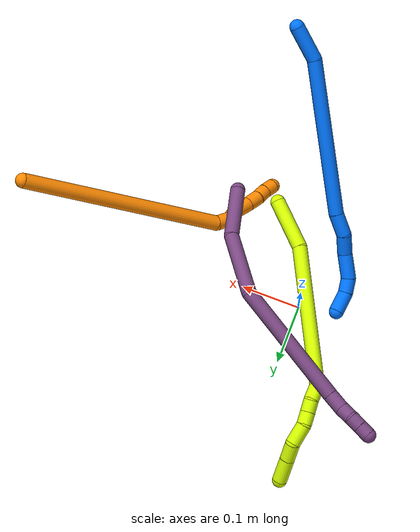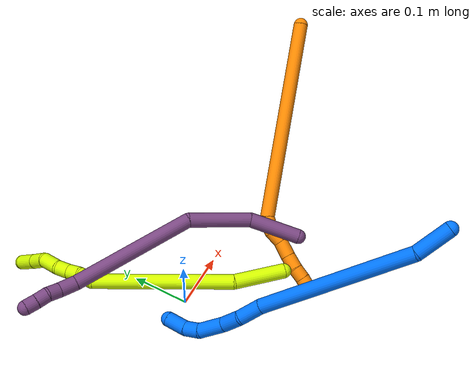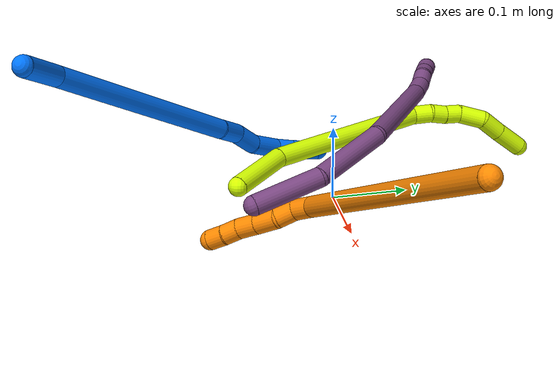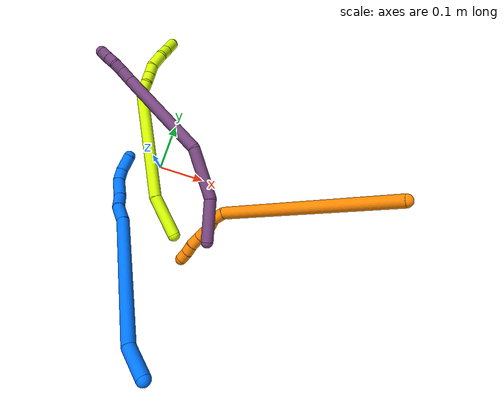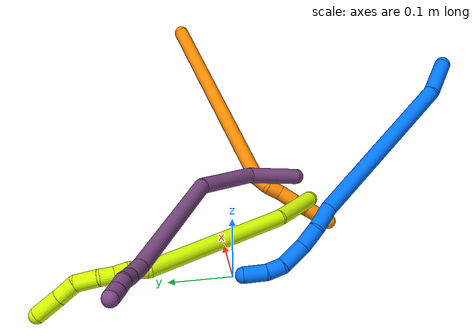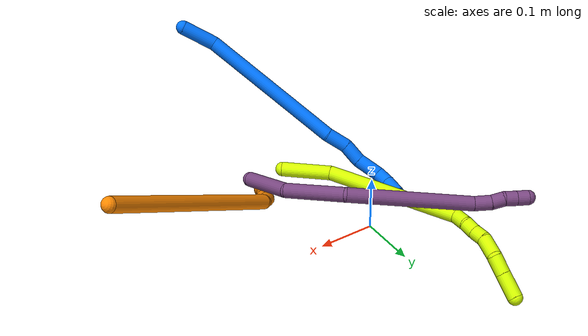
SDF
<sdf version="1.7">
 <world name="default">
  <model name="14">
   <static>0</static>
   <link name="14">
    <collision name="collision-cylinder-e_1_1_4">
     <pose>-0.004879 0.00105 -0.030403 -3.10707 -0.159019 2.71492</pose>
     <geometry><cylinder><radius>0.0125</radius><length>0.061621</length></cylinder></geometry>
     <surface>
      <friction><ode><mu>1.16</mu><mu2>1.16</mu2><slip1>0</slip1><slip2>0</slip2></ode></friction>
      <contact><ode><kp>1e+06</kp><kd>1</kd><max_vel>0</max_vel><min_depth>0.001</min_depth></ode></contact>
     </surface>
    </collision>
    <visual name="visual-cylinder-e_1_1_4">
     <pose>-0.004879 0.00105 -0.030403 -3.10707 -0.159019 2.71492</pose>
     <geometry><cylinder><radius>0.0125</radius><length>0.061621</length></cylinder></geometry>
     <material><ambient>0 0.462745 1 1</ambient></material>
    </visual>
    <collision name="collision-cylinder-e_2_4_5">
     <pose>-0.039482 0.049066 -0.179583 -2.76505 -0.228653 1.08476</pose>
     <geometry><cylinder><radius>0.0125</radius><length>0.262276</length></cylinder></geometry>
     <surface>
      <friction><ode><mu>1.16</mu><mu2>1.16</mu2><slip1>0</slip1><slip2>0</slip2></ode></friction>
      <contact><ode><kp>1e+06</kp><kd>1</kd><max_vel>0</max_vel><min_depth>0.001</min_depth></ode></contact>
     </surface>
    </collision>
    <visual name="visual-cylinder-e_2_4_5">
     <pose>-0.039482 0.049066 -0.179583 -2.76505 -0.228653 1.08476</pose>
     <geometry><cylinder><radius>0.0125</radius><length>0.262276</length></cylinder></geometry>
     <material><ambient>0 0.462745 1 1</ambient></material>
    </visual>
    <collision name="collision-cylinder-e_3_5_6">
     <pose>-0.0731 0.099195 -0.317044 -2.9739 -0.202631 1.76</pose>
     <geometry><cylinder><radius>0.0125</radius><length>0.038691</length></cylinder></geometry>
     <surface>
      <friction><ode><mu>1.16</mu><mu2>1.16</mu2><slip1>0</slip1><slip2>0</slip2></ode></friction>
      <contact><ode><kp>1e+06</kp><kd>1</kd><max_vel>0</max_vel><min_depth>0.001</min_depth></ode></contact>
     </surface>
    </collision>
    <visual name="visual-cylinder-e_3_5_6">
     <pose>-0.0731 0.099195 -0.317044 -2.9739 -0.202631 1.76</pose>
     <geometry><cylinder><radius>0.0125</radius><length>0.038691</length></cylinder></geometry>
     <material><ambient>0 0.462745 1 1</ambient></material>
    </visual>
    <collision name="collision-cylinder-e_4_6_7">
     <pose>-0.077879 0.109978 -0.351037 -2.67972 -0.051762 0.219306</pose>
     <geometry><cylinder><radius>0.0125</radius><length>0.034249</length></cylinder></geometry>
     <surface>
      <friction><ode><mu>1.16</mu><mu2>1.16</mu2><slip1>0</slip1><slip2>0</slip2></ode></friction>
      <contact><ode><kp>1e+06</kp><kd>1</kd><max_vel>0</max_vel><min_depth>0.001</min_depth></ode></contact>
     </surface>
    </collision>
    <visual name="visual-cylinder-e_4_6_7">
     <pose>-0.077879 0.109978 -0.351037 -2.67972 -0.051762 0.219306</pose>
     <geometry><cylinder><radius>0.0125</radius><length>0.034249</length></cylinder></geometry>
     <material><ambient>0 0.462745 1 1</ambient></material>
    </visual>
    <collision name="collision-cylinder-e_5_7_8">
     <pose>-0.085715 0.124986 -0.385387 -2.77151 -0.328028 1.448</pose>
     <geometry><cylinder><radius>0.0125</radius><length>0.043147</length></cylinder></geometry>
     <surface>
      <friction><ode><mu>1.16</mu><mu2>1.16</mu2><slip1>0</slip1><slip2>0</slip2></ode></friction>
      <contact><ode><kp>1e+06</kp><kd>1</kd><max_vel>0</max_vel><min_depth>0.001</min_depth></ode></contact>
     </surface>
    </collision>
    <visual name="visual-cylinder-e_5_7_8">
     <pose>-0.085715 0.124986 -0.385387 -2.77151 -0.328028 1.448</pose>
     <geometry><cylinder><radius>0.0125</radius><length>0.043147</length></cylinder></geometry>
     <material><ambient>0 0.462745 1 1</ambient></material>
    </visual>
    <collision name="collision-cylinder-e_6_8_9">
     <pose>-0.098593 0.140018 -0.412386 -2.37625 -0.492912 1.1172</pose>
     <geometry><cylinder><radius>0.0125</radius><length>0.025054</length></cylinder></geometry>
     <surface>
      <friction><ode><mu>1.16</mu><mu2>1.16</mu2><slip1>0</slip1><slip2>0</slip2></ode></friction>
      <contact><ode><kp>1e+06</kp><kd>1</kd><max_vel>0</max_vel><min_depth>0.001</min_depth></ode></contact>
     </surface>
    </collision>
    <visual name="visual-cylinder-e_6_8_9">
     <pose>-0.098593 0.140018 -0.412386 -2.37625 -0.492912 1.1172</pose>
     <geometry><cylinder><radius>0.0125</radius><length>0.025054</length></cylinder></geometry>
     <material><ambient>0 0.462745 1 1</ambient></material>
    </visual>
    <collision name="collision-cylinder-e_7_9_2">
     <pose>-0.114258 0.160564 -0.427006 -2.04749 -0.590718 0.926587</pose>
     <geometry><cylinder><radius>0.0125</radius><length>0.034963</length></cylinder></geometry>
     <surface>
      <friction><ode><mu>1.16</mu><mu2>1.16</mu2><slip1>0</slip1><slip2>0</slip2></ode></friction>
      <contact><ode><kp>1e+06</kp><kd>1</kd><max_vel>0</max_vel><min_depth>0.001</min_depth></ode></contact>
     </surface>
    </collision>
    <visual name="visual-cylinder-e_7_9_2">
     <pose>-0.114258 0.160564 -0.427006 -2.04749 -0.590718 0.926587</pose>
     <geometry><cylinder><radius>0.0125</radius><length>0.034963</length></cylinder></geometry>
     <material><ambient>0 0.462745 1 1</ambient></material>
    </visual>
    <collision name="collision-sphere-2">
     <pose>-0.123994 0.173464 -0.433668 0 -0 0</pose>
     <geometry><sphere><radius>0.0125</radius></sphere></geometry>
     <surface>
      <friction><ode><mu>1.16</mu><mu2>1.16</mu2><slip1>0</slip1><slip2>0</slip2></ode></friction>
      <contact><ode><kp>1e+06</kp><kd>1</kd><max_vel>0</max_vel><min_depth>0.001</min_depth></ode></contact>
     </surface>
    </collision>
    <visual name="visual-sphere-2">
     <pose>-0.123994 0.173464 -0.433668 0 -0 0</pose>
     <geometry><sphere><radius>0.0125</radius></sphere></geometry>
     <material><ambient>0 0.462745 1 1</ambient></material>
    </visual>
    <collision name="collision-sphere-9">
     <pose>-0.104521 0.147663 -0.420344 0 -0 0</pose>
     <geometry><sphere><radius>0.0125</radius></sphere></geometry>
     <surface>
      <friction><ode><mu>1.16</mu><mu2>1.16</mu2><slip1>0</slip1><slip2>0</slip2></ode></friction>
      <contact><ode><kp>1e+06</kp><kd>1</kd><max_vel>0</max_vel><min_depth>0.001</min_depth></ode></contact>
     </surface>
    </collision>
    <visual name="visual-sphere-9">
     <pose>-0.104521 0.147663 -0.420344 0 -0 0</pose>
     <geometry><sphere><radius>0.0125</radius></sphere></geometry>
     <material><ambient>0 0.462745 1 1</ambient></material>
    </visual>
    <collision name="collision-sphere-4">
     <pose>-0.009758 0.0021 -0.060807 0 -0 0</pose>
     <geometry><sphere><radius>0.0125</radius></sphere></geometry>
     <surface>
      <friction><ode><mu>1.16</mu><mu2>1.16</mu2><slip1>0</slip1><slip2>0</slip2></ode></friction>
      <contact><ode><kp>1e+06</kp><kd>1</kd><max_vel>0</max_vel><min_depth>0.001</min_depth></ode></contact>
     </surface>
    </collision>
    <visual name="visual-sphere-4">
     <pose>-0.009758 0.0021 -0.060807 0 -0 0</pose>
     <geometry><sphere><radius>0.0125</radius></sphere></geometry>
     <material><ambient>0 0.462745 1 1</ambient></material>
    </visual>
    <collision name="collision-sphere-1">
     <geometry><sphere><radius>0.0125</radius></sphere></geometry>
     <surface>
      <friction><ode><mu>1.16</mu><mu2>1.16</mu2><slip1>0</slip1><slip2>0</slip2></ode></friction>
      <contact><ode><kp>1e+06</kp><kd>1</kd><max_vel>0</max_vel><min_depth>0.001</min_depth></ode></contact>
     </surface>
    </collision>
    <visual name="visual-sphere-1">
     <geometry><sphere><radius>0.0125</radius></sphere></geometry>
     <material><ambient>0 0.462745 1 1</ambient></material>
    </visual>
    <collision name="collision-sphere-8">
     <pose>-0.092666 0.132373 -0.404427 0 -0 0</pose>
     <geometry><sphere><radius>0.0125</radius></sphere></geometry>
     <surface>
      <friction><ode><mu>1.16</mu><mu2>1.16</mu2><slip1>0</slip1><slip2>0</slip2></ode></friction>
      <contact><ode><kp>1e+06</kp><kd>1</kd><max_vel>0</max_vel><min_depth>0.001</min_depth></ode></contact>
     </surface>
    </collision>
    <visual name="visual-sphere-8">
     <pose>-0.092666 0.132373 -0.404427 0 -0 0</pose>
     <geometry><sphere><radius>0.0125</radius></sphere></geometry>
     <material><ambient>0 0.462745 1 1</ambient></material>
    </visual>
    <collision name="collision-sphere-5">
     <pose>-0.069207 0.096032 -0.29836 0 -0 0</pose>
     <geometry><sphere><radius>0.0125</radius></sphere></geometry>
     <surface>
      <friction><ode><mu>1.16</mu><mu2>1.16</mu2><slip1>0</slip1><slip2>0</slip2></ode></friction>
      <contact><ode><kp>1e+06</kp><kd>1</kd><max_vel>0</max_vel><min_depth>0.001</min_depth></ode></contact>
     </surface>
    </collision>
    <visual name="visual-sphere-5">
     <pose>-0.069207 0.096032 -0.29836 0 -0 0</pose>
     <geometry><sphere><radius>0.0125</radius></sphere></geometry>
     <material><ambient>0 0.462745 1 1</ambient></material>
    </visual>
    <collision name="collision-sphere-6">
     <pose>-0.076993 0.102357 -0.335728 0 -0 0</pose>
     <geometry><sphere><radius>0.0125</radius></sphere></geometry>
     <surface>
      <friction><ode><mu>1.16</mu><mu2>1.16</mu2><slip1>0</slip1><slip2>0</slip2></ode></friction>
      <contact><ode><kp>1e+06</kp><kd>1</kd><max_vel>0</max_vel><min_depth>0.001</min_depth></ode></contact>
     </surface>
    </collision>
    <visual name="visual-sphere-6">
     <pose>-0.076993 0.102357 -0.335728 0 -0 0</pose>
     <geometry><sphere><radius>0.0125</radius></sphere></geometry>
     <material><ambient>0 0.462745 1 1</ambient></material>
    </visual>
    <collision name="collision-sphere-7">
     <pose>-0.078765 0.117599 -0.366347 0 -0 0</pose>
     <geometry><sphere><radius>0.0125</radius></sphere></geometry>
     <surface>
      <friction><ode><mu>1.16</mu><mu2>1.16</mu2><slip1>0</slip1><slip2>0</slip2></ode></friction>
      <contact><ode><kp>1e+06</kp><kd>1</kd><max_vel>0</max_vel><min_depth>0.001</min_depth></ode></contact>
     </surface>
    </collision>
    <visual name="visual-sphere-7">
     <pose>-0.078765 0.117599 -0.366347 0 -0 0</pose>
     <geometry><sphere><radius>0.0125</radius></sphere></geometry>
     <material><ambient>0 0.462745 1 1</ambient></material>
    </visual>
    <inertial>
     <pose>-0.052629 0.070105 -0.230305 0 -0 0</pose>
     <mass>0.5</mass>
     <inertia><ixx>0.002</ixx><ixy>0</ixy><ixz>0</ixz><iyy>0.000818</iyy><iyz>0</iyz><izz>-0.000233</izz></inertia>
    </inertial>
   </link>
   <pose>0.15261 -0.371331 0.272761 -0.523222 0.80261 -1.19328</pose>
  </model>
  <model name="15">
   <static>0</static>
   <link name="15">
    <collision name="collision-cylinder-e_1_1_4">
     <pose>-0.031504 -0.020293 0.022054 0.743839 -0.810337 -0.331534</pose>
     <geometry><cylinder><radius>0.0125</radius><length>0.086964</length></cylinder></geometry>
     <surface>
      <friction><ode><mu>1.16</mu><mu2>1.16</mu2><slip1>0</slip1><slip2>0</slip2></ode></friction>
      <contact><ode><kp>1e+06</kp><kd>1</kd><max_vel>0</max_vel><min_depth>0.001</min_depth></ode></contact>
     </surface>
    </collision>
    <visual name="visual-cylinder-e_1_1_4">
     <pose>-0.031504 -0.020293 0.022054 0.743839 -0.810337 -0.331534</pose>
     <geometry><cylinder><radius>0.0125</radius><length>0.086964</length></cylinder></geometry>
     <material><ambient>0.835294 1 0 1</ambient></material>
    </visual>
    <collision name="collision-cylinder-e_2_4_5">
     <pose>-0.132281 -0.077527 0.131939 0.398131 -0.628643 -0.130982</pose>
     <geometry><cylinder><radius>0.0125</radius><length>0.235607</length></cylinder></geometry>
     <surface>
      <friction><ode><mu>1.16</mu><mu2>1.16</mu2><slip1>0</slip1><slip2>0</slip2></ode></friction>
      <contact><ode><kp>1e+06</kp><kd>1</kd><max_vel>0</max_vel><min_depth>0.001</min_depth></ode></contact>
     </surface>
    </collision>
    <visual name="visual-cylinder-e_2_4_5">
     <pose>-0.132281 -0.077527 0.131939 0.398131 -0.628643 -0.130982</pose>
     <geometry><cylinder><radius>0.0125</radius><length>0.235607</length></cylinder></geometry>
     <material><ambient>0.835294 1 0 1</ambient></material>
    </visual>
    <collision name="collision-cylinder-e_3_5_6">
     <pose>-0.203673 -0.116518 0.232596 0.158428 -0.161587 -0.012855</pose>
     <geometry><cylinder><radius>0.0125</radius><length>0.026323</length></cylinder></geometry>
     <surface>
      <friction><ode><mu>1.16</mu><mu2>1.16</mu2><slip1>0</slip1><slip2>0</slip2></ode></friction>
      <contact><ode><kp>1e+06</kp><kd>1</kd><max_vel>0</max_vel><min_depth>0.001</min_depth></ode></contact>
     </surface>
    </collision>
    <visual name="visual-cylinder-e_3_5_6">
     <pose>-0.203673 -0.116518 0.232596 0.158428 -0.161587 -0.012855</pose>
     <geometry><cylinder><radius>0.0125</radius><length>0.026323</length></cylinder></geometry>
     <material><ambient>0.835294 1 0 1</ambient></material>
    </visual>
    <collision name="collision-cylinder-e_4_6_7">
     <pose>-0.209821 -0.11832 0.255213 -0.025188 -0.390485 0.004981</pose>
     <geometry><cylinder><radius>0.0125</radius><length>0.02118</length></cylinder></geometry>
     <surface>
      <friction><ode><mu>1.16</mu><mu2>1.16</mu2><slip1>0</slip1><slip2>0</slip2></ode></friction>
      <contact><ode><kp>1e+06</kp><kd>1</kd><max_vel>0</max_vel><min_depth>0.001</min_depth></ode></contact>
     </surface>
    </collision>
    <visual name="visual-cylinder-e_4_6_7">
     <pose>-0.209821 -0.11832 0.255213 -0.025188 -0.390485 0.004981</pose>
     <geometry><cylinder><radius>0.0125</radius><length>0.02118</length></cylinder></geometry>
     <material><ambient>0.835294 1 0 1</ambient></material>
    </visual>
    <collision name="collision-cylinder-e_5_7_8">
     <pose>-0.217069 -0.119365 0.27531 0.124595 -0.300287 -0.018873</pose>
     <geometry><cylinder><radius>0.0125</radius><length>0.021749</length></cylinder></geometry>
     <surface>
      <friction><ode><mu>1.16</mu><mu2>1.16</mu2><slip1>0</slip1><slip2>0</slip2></ode></friction>
      <contact><ode><kp>1e+06</kp><kd>1</kd><max_vel>0</max_vel><min_depth>0.001</min_depth></ode></contact>
     </surface>
    </collision>
    <visual name="visual-cylinder-e_5_7_8">
     <pose>-0.217069 -0.119365 0.27531 0.124595 -0.300287 -0.018873</pose>
     <geometry><cylinder><radius>0.0125</radius><length>0.021749</length></cylinder></geometry>
     <material><ambient>0.835294 1 0 1</ambient></material>
    </visual>
    <collision name="collision-cylinder-e_6_8_9">
     <pose>-0.223298 -0.117224 0.302612 -0.19926 -0.172026 0.017238</pose>
     <geometry><cylinder><radius>0.0125</radius><length>0.035194</length></cylinder></geometry>
     <surface>
      <friction><ode><mu>1.16</mu><mu2>1.16</mu2><slip1>0</slip1><slip2>0</slip2></ode></friction>
      <contact><ode><kp>1e+06</kp><kd>1</kd><max_vel>0</max_vel><min_depth>0.001</min_depth></ode></contact>
     </surface>
    </collision>
    <visual name="visual-cylinder-e_6_8_9">
     <pose>-0.223298 -0.117224 0.302612 -0.19926 -0.172026 0.017238</pose>
     <geometry><cylinder><radius>0.0125</radius><length>0.035194</length></cylinder></geometry>
     <material><ambient>0.835294 1 0 1</ambient></material>
    </visual>
    <collision name="collision-cylinder-e_7_9_10">
     <pose>-0.233795 -0.106502 0.331311 -0.557031 -0.497286 0.144948</pose>
     <geometry><cylinder><radius>0.0125</radius><length>0.031379</length></cylinder></geometry>
     <surface>
      <friction><ode><mu>1.16</mu><mu2>1.16</mu2><slip1>0</slip1><slip2>0</slip2></ode></friction>
      <contact><ode><kp>1e+06</kp><kd>1</kd><max_vel>0</max_vel><min_depth>0.001</min_depth></ode></contact>
     </surface>
    </collision>
    <visual name="visual-cylinder-e_7_9_10">
     <pose>-0.233795 -0.106502 0.331311 -0.557031 -0.497286 0.144948</pose>
     <geometry><cylinder><radius>0.0125</radius><length>0.031379</length></cylinder></geometry>
     <material><ambient>0.835294 1 0 1</ambient></material>
    </visual>
    <collision name="collision-cylinder-e_8_10_2">
     <pose>-0.250989 -0.090051 0.358969 -0.521248 -0.485661 0.131936</pose>
     <geometry><cylinder><radius>0.0125</radius><length>0.041604</length></cylinder></geometry>
     <surface>
      <friction><ode><mu>1.16</mu><mu2>1.16</mu2><slip1>0</slip1><slip2>0</slip2></ode></friction>
      <contact><ode><kp>1e+06</kp><kd>1</kd><max_vel>0</max_vel><min_depth>0.001</min_depth></ode></contact>
     </surface>
    </collision>
    <visual name="visual-cylinder-e_8_10_2">
     <pose>-0.250989 -0.090051 0.358969 -0.521248 -0.485661 0.131936</pose>
     <geometry><cylinder><radius>0.0125</radius><length>0.041604</length></cylinder></geometry>
     <material><ambient>0.835294 1 0 1</ambient></material>
    </visual>
    <collision name="collision-sphere-2">
     <pose>-0.260699 -0.08089 0.374923 0 -0 0</pose>
     <geometry><sphere><radius>0.0125</radius></sphere></geometry>
     <surface>
      <friction><ode><mu>1.16</mu><mu2>1.16</mu2><slip1>0</slip1><slip2>0</slip2></ode></friction>
      <contact><ode><kp>1e+06</kp><kd>1</kd><max_vel>0</max_vel><min_depth>0.001</min_depth></ode></contact>
     </surface>
    </collision>
    <visual name="visual-sphere-2">
     <pose>-0.260699 -0.08089 0.374923 0 -0 0</pose>
     <geometry><sphere><radius>0.0125</radius></sphere></geometry>
     <material><ambient>0.835294 1 0 1</ambient></material>
    </visual>
    <collision name="collision-sphere-10">
     <pose>-0.241279 -0.099212 0.343016 0 -0 0</pose>
     <geometry><sphere><radius>0.0125</radius></sphere></geometry>
     <surface>
      <friction><ode><mu>1.16</mu><mu2>1.16</mu2><slip1>0</slip1><slip2>0</slip2></ode></friction>
      <contact><ode><kp>1e+06</kp><kd>1</kd><max_vel>0</max_vel><min_depth>0.001</min_depth></ode></contact>
     </surface>
    </collision>
    <visual name="visual-sphere-10">
     <pose>-0.241279 -0.099212 0.343016 0 -0 0</pose>
     <geometry><sphere><radius>0.0125</radius></sphere></geometry>
     <material><ambient>0.835294 1 0 1</ambient></material>
    </visual>
    <collision name="collision-sphere-9">
     <pose>-0.22631 -0.113792 0.319606 0 -0 0</pose>
     <geometry><sphere><radius>0.0125</radius></sphere></geometry>
     <surface>
      <friction><ode><mu>1.16</mu><mu2>1.16</mu2><slip1>0</slip1><slip2>0</slip2></ode></friction>
      <contact><ode><kp>1e+06</kp><kd>1</kd><max_vel>0</max_vel><min_depth>0.001</min_depth></ode></contact>
     </surface>
    </collision>
    <visual name="visual-sphere-9">
     <pose>-0.22631 -0.113792 0.319606 0 -0 0</pose>
     <geometry><sphere><radius>0.0125</radius></sphere></geometry>
     <material><ambient>0.835294 1 0 1</ambient></material>
    </visual>
    <collision name="collision-sphere-4">
     <pose>-0.063007 -0.040587 0.044108 0 -0 0</pose>
     <geometry><sphere><radius>0.0125</radius></sphere></geometry>
     <surface>
      <friction><ode><mu>1.16</mu><mu2>1.16</mu2><slip1>0</slip1><slip2>0</slip2></ode></friction>
      <contact><ode><kp>1e+06</kp><kd>1</kd><max_vel>0</max_vel><min_depth>0.001</min_depth></ode></contact>
     </surface>
    </collision>
    <visual name="visual-sphere-4">
     <pose>-0.063007 -0.040587 0.044108 0 -0 0</pose>
     <geometry><sphere><radius>0.0125</radius></sphere></geometry>
     <material><ambient>0.835294 1 0 1</ambient></material>
    </visual>
    <collision name="collision-sphere-1">
     <geometry><sphere><radius>0.0125</radius></sphere></geometry>
     <surface>
      <friction><ode><mu>1.16</mu><mu2>1.16</mu2><slip1>0</slip1><slip2>0</slip2></ode></friction>
      <contact><ode><kp>1e+06</kp><kd>1</kd><max_vel>0</max_vel><min_depth>0.001</min_depth></ode></contact>
     </surface>
    </collision>
    <visual name="visual-sphere-1">
     <geometry><sphere><radius>0.0125</radius></sphere></geometry>
     <material><ambient>0.835294 1 0 1</ambient></material>
    </visual>
    <collision name="collision-sphere-8">
     <pose>-0.220285 -0.120656 0.285618 0 -0 0</pose>
     <geometry><sphere><radius>0.0125</radius></sphere></geometry>
     <surface>
      <friction><ode><mu>1.16</mu><mu2>1.16</mu2><slip1>0</slip1><slip2>0</slip2></ode></friction>
      <contact><ode><kp>1e+06</kp><kd>1</kd><max_vel>0</max_vel><min_depth>0.001</min_depth></ode></contact>
     </surface>
    </collision>
    <visual name="visual-sphere-8">
     <pose>-0.220285 -0.120656 0.285618 0 -0 0</pose>
     <geometry><sphere><radius>0.0125</radius></sphere></geometry>
     <material><ambient>0.835294 1 0 1</ambient></material>
    </visual>
    <collision name="collision-sphere-5">
     <pose>-0.201555 -0.114468 0.219769 0 -0 0</pose>
     <geometry><sphere><radius>0.0125</radius></sphere></geometry>
     <surface>
      <friction><ode><mu>1.16</mu><mu2>1.16</mu2><slip1>0</slip1><slip2>0</slip2></ode></friction>
      <contact><ode><kp>1e+06</kp><kd>1</kd><max_vel>0</max_vel><min_depth>0.001</min_depth></ode></contact>
     </surface>
    </collision>
    <visual name="visual-sphere-5">
     <pose>-0.201555 -0.114468 0.219769 0 -0 0</pose>
     <geometry><sphere><radius>0.0125</radius></sphere></geometry>
     <material><ambient>0.835294 1 0 1</ambient></material>
    </visual>
    <collision name="collision-sphere-6">
     <pose>-0.20579 -0.118567 0.245424 0 -0 0</pose>
     <geometry><sphere><radius>0.0125</radius></sphere></geometry>
     <surface>
      <friction><ode><mu>1.16</mu><mu2>1.16</mu2><slip1>0</slip1><slip2>0</slip2></ode></friction>
      <contact><ode><kp>1e+06</kp><kd>1</kd><max_vel>0</max_vel><min_depth>0.001</min_depth></ode></contact>
     </surface>
    </collision>
    <visual name="visual-sphere-6">
     <pose>-0.20579 -0.118567 0.245424 0 -0 0</pose>
     <geometry><sphere><radius>0.0125</radius></sphere></geometry>
     <material><ambient>0.835294 1 0 1</ambient></material>
    </visual>
    <collision name="collision-sphere-7">
     <pose>-0.213852 -0.118074 0.265003 0 -0 0</pose>
     <geometry><sphere><radius>0.0125</radius></sphere></geometry>
     <surface>
      <friction><ode><mu>1.16</mu><mu2>1.16</mu2><slip1>0</slip1><slip2>0</slip2></ode></friction>
      <contact><ode><kp>1e+06</kp><kd>1</kd><max_vel>0</max_vel><min_depth>0.001</min_depth></ode></contact>
     </surface>
    </collision>
    <visual name="visual-sphere-7">
     <pose>-0.213852 -0.118074 0.265003 0 -0 0</pose>
     <geometry><sphere><radius>0.0125</radius></sphere></geometry>
     <material><ambient>0.835294 1 0 1</ambient></material>
    </visual>
    <inertial>
     <pose>-0.148139 -0.078828 0.173001 0 -0 0</pose>
     <mass>0.5</mass>
     <inertia>
      <ixx>0.000792</ixx>
      <ixy>0</ixy>
      <ixz>0</ixz>
      <iyy>0.000974</iyy>
      <iyz>0</iyz>
      <izz>0.001092</izz>
     </inertia>
    </inertial>
   </link>
   <pose>0.092103 -0.139364 0.076778 -1.58621 -0.519819 -0.239242</pose>
  </model>
  <model name="19">
   <static>0</static>
   <link name="19">
    <collision name="collision-cylinder-e_1_1_4">
     <pose>-0.017368 -0.008226 -0.177308 3.09523 -0.097539 -2.25465</pose>
     <geometry><cylinder><radius>0.0125</radius><length>0.356693</length></cylinder></geometry>
     <surface>
      <friction><ode><mu>1.16</mu><mu2>1.16</mu2><slip1>0</slip1><slip2>0</slip2></ode></friction>
      <contact><ode><kp>1e+06</kp><kd>1</kd><max_vel>0</max_vel><min_depth>0.001</min_depth></ode></contact>
     </surface>
    </collision>
    <visual name="visual-cylinder-e_1_1_4">
     <pose>-0.017368 -0.008226 -0.177308 3.09523 -0.097539 -2.25465</pose>
     <geometry><cylinder><radius>0.0125</radius><length>0.356693</length></cylinder></geometry>
     <material><ambient>0.996078 0.537255 0 1</ambient></material>
    </visual>
    <collision name="collision-cylinder-e_2_4_5">
     <pose>-0.036498 -0.022558 -0.365715 2.63871 -0.13819 -0.526319</pose>
     <geometry><cylinder><radius>0.0125</radius><length>0.02558</length></cylinder></geometry>
     <surface>
      <friction><ode><mu>1.16</mu><mu2>1.16</mu2><slip1>0</slip1><slip2>0</slip2></ode></friction>
      <contact><ode><kp>1e+06</kp><kd>1</kd><max_vel>0</max_vel><min_depth>0.001</min_depth></ode></contact>
     </surface>
    </collision>
    <visual name="visual-cylinder-e_2_4_5">
     <pose>-0.036498 -0.022558 -0.365715 2.63871 -0.13819 -0.526319</pose>
     <geometry><cylinder><radius>0.0125</radius><length>0.02558</length></cylinder></geometry>
     <material><ambient>0.996078 0.537255 0 1</ambient></material>
    </visual>
    <collision name="collision-cylinder-e_3_5_6">
     <pose>-0.037307 -0.038292 -0.383599 2.18456 0.080709 0.155362</pose>
     <geometry><cylinder><radius>0.0125</radius><length>0.023634</length></cylinder></geometry>
     <surface>
      <friction><ode><mu>1.16</mu><mu2>1.16</mu2><slip1>0</slip1><slip2>0</slip2></ode></friction>
      <contact><ode><kp>1e+06</kp><kd>1</kd><max_vel>0</max_vel><min_depth>0.001</min_depth></ode></contact>
     </surface>
    </collision>
    <visual name="visual-cylinder-e_3_5_6">
     <pose>-0.037307 -0.038292 -0.383599 2.18456 0.080709 0.155362</pose>
     <geometry><cylinder><radius>0.0125</radius><length>0.023634</length></cylinder></geometry>
     <material><ambient>0.996078 0.537255 0 1</ambient></material>
    </visual>
    <collision name="collision-cylinder-e_4_6_7">
     <pose>-0.037334 -0.056888 -0.401352 2.45629 -0.069036 -0.193006</pose>
     <geometry><cylinder><radius>0.0125</radius><length>0.028403</length></cylinder></geometry>
     <surface>
      <friction><ode><mu>1.16</mu><mu2>1.16</mu2><slip1>0</slip1><slip2>0</slip2></ode></friction>
      <contact><ode><kp>1e+06</kp><kd>1</kd><max_vel>0</max_vel><min_depth>0.001</min_depth></ode></contact>
     </surface>
    </collision>
    <visual name="visual-cylinder-e_4_6_7">
     <pose>-0.037334 -0.056888 -0.401352 2.45629 -0.069036 -0.193006</pose>
     <geometry><cylinder><radius>0.0125</radius><length>0.028403</length></cylinder></geometry>
     <material><ambient>0.996078 0.537255 0 1</ambient></material>
    </visual>
    <collision name="collision-cylinder-e_5_7_8">
     <pose>-0.03941 -0.074118 -0.42132 2.39883 -0.089461 -0.228858</pose>
     <geometry><cylinder><radius>0.0125</radius><length>0.024533</length></cylinder></geometry>
     <surface>
      <friction><ode><mu>1.16</mu><mu2>1.16</mu2><slip1>0</slip1><slip2>0</slip2></ode></friction>
      <contact><ode><kp>1e+06</kp><kd>1</kd><max_vel>0</max_vel><min_depth>0.001</min_depth></ode></contact>
     </surface>
    </collision>
    <visual name="visual-cylinder-e_5_7_8">
     <pose>-0.03941 -0.074118 -0.42132 2.39883 -0.089461 -0.228858</pose>
     <geometry><cylinder><radius>0.0125</radius><length>0.024533</length></cylinder></geometry>
     <material><ambient>0.996078 0.537255 0 1</ambient></material>
    </visual>
    <collision name="collision-cylinder-e_6_8_9">
     <pose>-0.040026 -0.090119 -0.436996 2.28263 0.046911 0.102357</pose>
     <geometry><cylinder><radius>0.0125</radius><length>0.020462</length></cylinder></geometry>
     <surface>
      <friction><ode><mu>1.16</mu><mu2>1.16</mu2><slip1>0</slip1><slip2>0</slip2></ode></friction>
      <contact><ode><kp>1e+06</kp><kd>1</kd><max_vel>0</max_vel><min_depth>0.001</min_depth></ode></contact>
     </surface>
    </collision>
    <visual name="visual-cylinder-e_6_8_9">
     <pose>-0.040026 -0.090119 -0.436996 2.28263 0.046911 0.102357</pose>
     <geometry><cylinder><radius>0.0125</radius><length>0.020462</length></cylinder></geometry>
     <material><ambient>0.996078 0.537255 0 1</ambient></material>
    </visual>
    <collision name="collision-cylinder-e_7_9_2">
     <pose>-0.039704 -0.104851 -0.451296 2.39927 -0.015279 -0.039254</pose>
     <geometry><cylinder><radius>0.0125</radius><length>0.020695</length></cylinder></geometry>
     <surface>
      <friction><ode><mu>1.16</mu><mu2>1.16</mu2><slip1>0</slip1><slip2>0</slip2></ode></friction>
      <contact><ode><kp>1e+06</kp><kd>1</kd><max_vel>0</max_vel><min_depth>0.001</min_depth></ode></contact>
     </surface>
    </collision>
    <visual name="visual-cylinder-e_7_9_2">
     <pose>-0.039704 -0.104851 -0.451296 2.39927 -0.015279 -0.039254</pose>
     <geometry><cylinder><radius>0.0125</radius><length>0.020695</length></cylinder></geometry>
     <material><ambient>0.996078 0.537255 0 1</ambient></material>
    </visual>
    <collision name="collision-sphere-2">
     <pose>-0.039862 -0.111845 -0.45892 0 -0 0</pose>
     <geometry><sphere><radius>0.0125</radius></sphere></geometry>
     <surface>
      <friction><ode><mu>1.16</mu><mu2>1.16</mu2><slip1>0</slip1><slip2>0</slip2></ode></friction>
      <contact><ode><kp>1e+06</kp><kd>1</kd><max_vel>0</max_vel><min_depth>0.001</min_depth></ode></contact>
     </surface>
    </collision>
    <visual name="visual-sphere-2">
     <pose>-0.039862 -0.111845 -0.45892 0 -0 0</pose>
     <geometry><sphere><radius>0.0125</radius></sphere></geometry>
     <material><ambient>0.996078 0.537255 0 1</ambient></material>
    </visual>
    <collision name="collision-sphere-9">
     <pose>-0.039546 -0.097857 -0.443671 0 -0 0</pose>
     <geometry><sphere><radius>0.0125</radius></sphere></geometry>
     <surface>
      <friction><ode><mu>1.16</mu><mu2>1.16</mu2><slip1>0</slip1><slip2>0</slip2></ode></friction>
      <contact><ode><kp>1e+06</kp><kd>1</kd><max_vel>0</max_vel><min_depth>0.001</min_depth></ode></contact>
     </surface>
    </collision>
    <visual name="visual-sphere-9">
     <pose>-0.039546 -0.097857 -0.443671 0 -0 0</pose>
     <geometry><sphere><radius>0.0125</radius></sphere></geometry>
     <material><ambient>0.996078 0.537255 0 1</ambient></material>
    </visual>
    <collision name="collision-sphere-4">
     <pose>-0.034736 -0.016453 -0.354616 0 -0 0</pose>
     <geometry><sphere><radius>0.0125</radius></sphere></geometry>
     <surface>
      <friction><ode><mu>1.16</mu><mu2>1.16</mu2><slip1>0</slip1><slip2>0</slip2></ode></friction>
      <contact><ode><kp>1e+06</kp><kd>1</kd><max_vel>0</max_vel><min_depth>0.001</min_depth></ode></contact>
     </surface>
    </collision>
    <visual name="visual-sphere-4">
     <pose>-0.034736 -0.016453 -0.354616 0 -0 0</pose>
     <geometry><sphere><radius>0.0125</radius></sphere></geometry>
     <material><ambient>0.996078 0.537255 0 1</ambient></material>
    </visual>
    <collision name="collision-sphere-1">
     <geometry><sphere><radius>0.0125</radius></sphere></geometry>
     <surface>
      <friction><ode><mu>1.16</mu><mu2>1.16</mu2><slip1>0</slip1><slip2>0</slip2></ode></friction>
      <contact><ode><kp>1e+06</kp><kd>1</kd><max_vel>0</max_vel><min_depth>0.001</min_depth></ode></contact>
     </surface>
    </collision>
    <visual name="visual-sphere-1">
     <geometry><sphere><radius>0.0125</radius></sphere></geometry>
     <material><ambient>0.996078 0.537255 0 1</ambient></material>
    </visual>
    <collision name="collision-sphere-8">
     <pose>-0.040506 -0.082381 -0.43032 0 -0 0</pose>
     <geometry><sphere><radius>0.0125</radius></sphere></geometry>
     <surface>
      <friction><ode><mu>1.16</mu><mu2>1.16</mu2><slip1>0</slip1><slip2>0</slip2></ode></friction>
      <contact><ode><kp>1e+06</kp><kd>1</kd><max_vel>0</max_vel><min_depth>0.001</min_depth></ode></contact>
     </surface>
    </collision>
    <visual name="visual-sphere-8">
     <pose>-0.040506 -0.082381 -0.43032 0 -0 0</pose>
     <geometry><sphere><radius>0.0125</radius></sphere></geometry>
     <material><ambient>0.996078 0.537255 0 1</ambient></material>
    </visual>
    <collision name="collision-sphere-5">
     <pose>-0.03826 -0.028663 -0.376815 0 -0 0</pose>
     <geometry><sphere><radius>0.0125</radius></sphere></geometry>
     <surface>
      <friction><ode><mu>1.16</mu><mu2>1.16</mu2><slip1>0</slip1><slip2>0</slip2></ode></friction>
      <contact><ode><kp>1e+06</kp><kd>1</kd><max_vel>0</max_vel><min_depth>0.001</min_depth></ode></contact>
     </surface>
    </collision>
    <visual name="visual-sphere-5">
     <pose>-0.03826 -0.028663 -0.376815 0 -0 0</pose>
     <geometry><sphere><radius>0.0125</radius></sphere></geometry>
     <material><ambient>0.996078 0.537255 0 1</ambient></material>
    </visual>
    <collision name="collision-sphere-6">
     <pose>-0.036354 -0.047921 -0.390383 0 -0 0</pose>
     <geometry><sphere><radius>0.0125</radius></sphere></geometry>
     <surface>
      <friction><ode><mu>1.16</mu><mu2>1.16</mu2><slip1>0</slip1><slip2>0</slip2></ode></friction>
      <contact><ode><kp>1e+06</kp><kd>1</kd><max_vel>0</max_vel><min_depth>0.001</min_depth></ode></contact>
     </surface>
    </collision>
    <visual name="visual-sphere-6">
     <pose>-0.036354 -0.047921 -0.390383 0 -0 0</pose>
     <geometry><sphere><radius>0.0125</radius></sphere></geometry>
     <material><ambient>0.996078 0.537255 0 1</ambient></material>
    </visual>
    <collision name="collision-sphere-7">
     <pose>-0.038314 -0.065855 -0.412321 0 -0 0</pose>
     <geometry><sphere><radius>0.0125</radius></sphere></geometry>
     <surface>
      <friction><ode><mu>1.16</mu><mu2>1.16</mu2><slip1>0</slip1><slip2>0</slip2></ode></friction>
      <contact><ode><kp>1e+06</kp><kd>1</kd><max_vel>0</max_vel><min_depth>0.001</min_depth></ode></contact>
     </surface>
    </collision>
    <visual name="visual-sphere-7">
     <pose>-0.038314 -0.065855 -0.412321 0 -0 0</pose>
     <geometry><sphere><radius>0.0125</radius></sphere></geometry>
     <material><ambient>0.996078 0.537255 0 1</ambient></material>
    </visual>
    <inertial>
     <pose>-0.023357 -0.023729 -0.243366 0 -0 0</pose>
     <mass>0.5</mass>
     <inertia>
      <ixx>-0.005308</ixx>
      <ixy>0</ixy>
      <ixz>0</ixz>
      <iyy>-0.000539</iyy>
      <iyz>0</iyz>
      <izz>0.000518</izz>
     </inertia>
    </inertial>
   </link>
   <pose>0.471928 0.026558 0.256575 0.156313 0.963238 0.426972</pose>
  </model>
  <model name="20">
   <static>0</static>
   <link name="20">
    <collision name="collision-cylinder-e_1_1_4">
     <pose>-0.031801 0.029419 -0.004289 -1.71558 -0.819048 0.930399</pose>
     <geometry><cylinder><radius>0.0125</radius><length>0.087068</length></cylinder></geometry>
     <surface>
      <friction><ode><mu>1.16</mu><mu2>1.16</mu2><slip1>0</slip1><slip2>0</slip2></ode></friction>
      <contact><ode><kp>1e+06</kp><kd>1</kd><max_vel>0</max_vel><min_depth>0.001</min_depth></ode></contact>
     </surface>
    </collision>
    <visual name="visual-cylinder-e_1_1_4">
     <pose>-0.031801 0.029419 -0.004289 -1.71558 -0.819048 0.930399</pose>
     <geometry><cylinder><radius>0.0125</radius><length>0.087068</length></cylinder></geometry>
     <material><ambient>0.478431 0.278431 0.509804 1</ambient></material>
    </visual>
    <collision name="collision-cylinder-e_2_4_5">
     <pose>-0.113609 0.078204 -0.007776 -1.52939 -1.20102 1.16269</pose>
     <geometry><cylinder><radius>0.0125</radius><length>0.107263</length></cylinder></geometry>
     <surface>
      <friction><ode><mu>1.16</mu><mu2>1.16</mu2><slip1>0</slip1><slip2>0</slip2></ode></friction>
      <contact><ode><kp>1e+06</kp><kd>1</kd><max_vel>0</max_vel><min_depth>0.001</min_depth></ode></contact>
     </surface>
    </collision>
    <visual name="visual-cylinder-e_2_4_5">
     <pose>-0.113609 0.078204 -0.007776 -1.52939 -1.20102 1.16269</pose>
     <geometry><cylinder><radius>0.0125</radius><length>0.107263</length></cylinder></geometry>
     <material><ambient>0.478431 0.278431 0.509804 1</ambient></material>
    </visual>
    <collision name="collision-cylinder-e_3_5_6">
     <pose>-0.269407 0.084724 -0.013316 2.02935 -1.43619 -1.90491</pose>
     <geometry><cylinder><radius>0.0125</radius><length>0.213514</length></cylinder></geometry>
     <surface>
      <friction><ode><mu>1.16</mu><mu2>1.16</mu2><slip1>0</slip1><slip2>0</slip2></ode></friction>
      <contact><ode><kp>1e+06</kp><kd>1</kd><max_vel>0</max_vel><min_depth>0.001</min_depth></ode></contact>
     </surface>
    </collision>
    <visual name="visual-cylinder-e_3_5_6">
     <pose>-0.269407 0.084724 -0.013316 2.02935 -1.43619 -1.90491</pose>
     <geometry><cylinder><radius>0.0125</radius><length>0.213514</length></cylinder></geometry>
     <material><ambient>0.478431 0.278431 0.509804 1</ambient></material>
    </visual>
    <collision name="collision-cylinder-e_4_6_7">
     <pose>-0.38995 0.071302 -0.01827 0.392444 -1.46934 -0.355353</pose>
     <geometry><cylinder><radius>0.0125</radius><length>0.029655</length></cylinder></geometry>
     <surface>
      <friction><ode><mu>1.16</mu><mu2>1.16</mu2><slip1>0</slip1><slip2>0</slip2></ode></friction>
      <contact><ode><kp>1e+06</kp><kd>1</kd><max_vel>0</max_vel><min_depth>0.001</min_depth></ode></contact>
     </surface>
    </collision>
    <visual name="visual-cylinder-e_4_6_7">
     <pose>-0.38995 0.071302 -0.01827 0.392444 -1.46934 -0.355353</pose>
     <geometry><cylinder><radius>0.0125</radius><length>0.029655</length></cylinder></geometry>
     <material><ambient>0.478431 0.278431 0.509804 1</ambient></material>
    </visual>
    <collision name="collision-cylinder-e_5_7_8">
     <pose>-0.415004 0.070635 -0.013577 0.028164 -1.26023 -0.02054</pose>
     <geometry><cylinder><radius>0.0125</radius><length>0.021641</length></cylinder></geometry>
     <surface>
      <friction><ode><mu>1.16</mu><mu2>1.16</mu2><slip1>0</slip1><slip2>0</slip2></ode></friction>
      <contact><ode><kp>1e+06</kp><kd>1</kd><max_vel>0</max_vel><min_depth>0.001</min_depth></ode></contact>
     </surface>
    </collision>
    <visual name="visual-cylinder-e_5_7_8">
     <pose>-0.415004 0.070635 -0.013577 0.028164 -1.26023 -0.02054</pose>
     <geometry><cylinder><radius>0.0125</radius><length>0.021641</length></cylinder></geometry>
     <material><ambient>0.478431 0.278431 0.509804 1</ambient></material>
    </visual>
    <collision name="collision-cylinder-e_6_8_9">
     <pose>-0.435436 0.068623 -0.009864 1.36145 -1.3795 -1.17794</pose>
     <geometry><cylinder><radius>0.0125</radius><length>0.020636</length></cylinder></geometry>
     <surface>
      <friction><ode><mu>1.16</mu><mu2>1.16</mu2><slip1>0</slip1><slip2>0</slip2></ode></friction>
      <contact><ode><kp>1e+06</kp><kd>1</kd><max_vel>0</max_vel><min_depth>0.001</min_depth></ode></contact>
     </surface>
    </collision>
    <visual name="visual-cylinder-e_6_8_9">
     <pose>-0.435436 0.068623 -0.009864 1.36145 -1.3795 -1.17794</pose>
     <geometry><cylinder><radius>0.0125</radius><length>0.020636</length></cylinder></geometry>
     <material><ambient>0.478431 0.278431 0.509804 1</ambient></material>
    </visual>
    <collision name="collision-cylinder-e_7_9_2">
     <pose>-0.45556 0.065344 -0.008738 1.08471 -1.41809 -0.954278</pose>
     <geometry><cylinder><radius>0.0125</radius><length>0.020223</length></cylinder></geometry>
     <surface>
      <friction><ode><mu>1.16</mu><mu2>1.16</mu2><slip1>0</slip1><slip2>0</slip2></ode></friction>
      <contact><ode><kp>1e+06</kp><kd>1</kd><max_vel>0</max_vel><min_depth>0.001</min_depth></ode></contact>
     </surface>
    </collision>
    <visual name="visual-cylinder-e_7_9_2">
     <pose>-0.45556 0.065344 -0.008738 1.08471 -1.41809 -0.954278</pose>
     <geometry><cylinder><radius>0.0125</radius><length>0.020223</length></cylinder></geometry>
     <material><ambient>0.478431 0.278431 0.509804 1</ambient></material>
    </visual>
    <collision name="collision-sphere-2">
     <pose>-0.465554 0.063984 -0.008019 0 -0 0</pose>
     <geometry><sphere><radius>0.0125</radius></sphere></geometry>
     <surface>
      <friction><ode><mu>1.16</mu><mu2>1.16</mu2><slip1>0</slip1><slip2>0</slip2></ode></friction>
      <contact><ode><kp>1e+06</kp><kd>1</kd><max_vel>0</max_vel><min_depth>0.001</min_depth></ode></contact>
     </surface>
    </collision>
    <visual name="visual-sphere-2">
     <pose>-0.465554 0.063984 -0.008019 0 -0 0</pose>
     <geometry><sphere><radius>0.0125</radius></sphere></geometry>
     <material><ambient>0.478431 0.278431 0.509804 1</ambient></material>
    </visual>
    <collision name="collision-sphere-9">
     <pose>-0.445566 0.066704 -0.009456 0 -0 0</pose>
     <geometry><sphere><radius>0.0125</radius></sphere></geometry>
     <surface>
      <friction><ode><mu>1.16</mu><mu2>1.16</mu2><slip1>0</slip1><slip2>0</slip2></ode></friction>
      <contact><ode><kp>1e+06</kp><kd>1</kd><max_vel>0</max_vel><min_depth>0.001</min_depth></ode></contact>
     </surface>
    </collision>
    <visual name="visual-sphere-9">
     <pose>-0.445566 0.066704 -0.009456 0 -0 0</pose>
     <geometry><sphere><radius>0.0125</radius></sphere></geometry>
     <material><ambient>0.478431 0.278431 0.509804 1</ambient></material>
    </visual>
    <collision name="collision-sphere-4">
     <pose>-0.063603 0.058838 -0.008579 0 -0 0</pose>
     <geometry><sphere><radius>0.0125</radius></sphere></geometry>
     <surface>
      <friction><ode><mu>1.16</mu><mu2>1.16</mu2><slip1>0</slip1><slip2>0</slip2></ode></friction>
      <contact><ode><kp>1e+06</kp><kd>1</kd><max_vel>0</max_vel><min_depth>0.001</min_depth></ode></contact>
     </surface>
    </collision>
    <visual name="visual-sphere-4">
     <pose>-0.063603 0.058838 -0.008579 0 -0 0</pose>
     <geometry><sphere><radius>0.0125</radius></sphere></geometry>
     <material><ambient>0.478431 0.278431 0.509804 1</ambient></material>
    </visual>
    <collision name="collision-sphere-1">
     <geometry><sphere><radius>0.0125</radius></sphere></geometry>
     <surface>
      <friction><ode><mu>1.16</mu><mu2>1.16</mu2><slip1>0</slip1><slip2>0</slip2></ode></friction>
      <contact><ode><kp>1e+06</kp><kd>1</kd><max_vel>0</max_vel><min_depth>0.001</min_depth></ode></contact>
     </surface>
    </collision>
    <visual name="visual-sphere-1">
     <geometry><sphere><radius>0.0125</radius></sphere></geometry>
     <material><ambient>0.478431 0.278431 0.509804 1</ambient></material>
    </visual>
    <collision name="collision-sphere-8">
     <pose>-0.425306 0.070542 -0.010272 0 -0 0</pose>
     <geometry><sphere><radius>0.0125</radius></sphere></geometry>
     <surface>
      <friction><ode><mu>1.16</mu><mu2>1.16</mu2><slip1>0</slip1><slip2>0</slip2></ode></friction>
      <contact><ode><kp>1e+06</kp><kd>1</kd><max_vel>0</max_vel><min_depth>0.001</min_depth></ode></contact>
     </surface>
    </collision>
    <visual name="visual-sphere-8">
     <pose>-0.425306 0.070542 -0.010272 0 -0 0</pose>
     <geometry><sphere><radius>0.0125</radius></sphere></geometry>
     <material><ambient>0.478431 0.278431 0.509804 1</ambient></material>
    </visual>
    <collision name="collision-sphere-5">
     <pose>-0.163616 0.097571 -0.006974 0 -0 0</pose>
     <geometry><sphere><radius>0.0125</radius></sphere></geometry>
     <surface>
      <friction><ode><mu>1.16</mu><mu2>1.16</mu2><slip1>0</slip1><slip2>0</slip2></ode></friction>
      <contact><ode><kp>1e+06</kp><kd>1</kd><max_vel>0</max_vel><min_depth>0.001</min_depth></ode></contact>
     </surface>
    </collision>
    <visual name="visual-sphere-5">
     <pose>-0.163616 0.097571 -0.006974 0 -0 0</pose>
     <geometry><sphere><radius>0.0125</radius></sphere></geometry>
     <material><ambient>0.478431 0.278431 0.509804 1</ambient></material>
    </visual>
    <collision name="collision-sphere-6">
     <pose>-0.375199 0.071877 -0.019658 0 -0 0</pose>
     <geometry><sphere><radius>0.0125</radius></sphere></geometry>
     <surface>
      <friction><ode><mu>1.16</mu><mu2>1.16</mu2><slip1>0</slip1><slip2>0</slip2></ode></friction>
      <contact><ode><kp>1e+06</kp><kd>1</kd><max_vel>0</max_vel><min_depth>0.001</min_depth></ode></contact>
     </surface>
    </collision>
    <visual name="visual-sphere-6">
     <pose>-0.375199 0.071877 -0.019658 0 -0 0</pose>
     <geometry><sphere><radius>0.0125</radius></sphere></geometry>
     <material><ambient>0.478431 0.278431 0.509804 1</ambient></material>
    </visual>
    <collision name="collision-sphere-7">
     <pose>-0.404701 0.070728 -0.016882 0 -0 0</pose>
     <geometry><sphere><radius>0.0125</radius></sphere></geometry>
     <surface>
      <friction><ode><mu>1.16</mu><mu2>1.16</mu2><slip1>0</slip1><slip2>0</slip2></ode></friction>
      <contact><ode><kp>1e+06</kp><kd>1</kd><max_vel>0</max_vel><min_depth>0.001</min_depth></ode></contact>
     </surface>
    </collision>
    <visual name="visual-sphere-7">
     <pose>-0.404701 0.070728 -0.016882 0 -0 0</pose>
     <geometry><sphere><radius>0.0125</radius></sphere></geometry>
     <material><ambient>0.478431 0.278431 0.509804 1</ambient></material>
    </visual>
    <inertial>
     <pose>-0.222441 0.070841 -0.010533 0 -0 0</pose>
     <mass>0.5</mass>
     <inertia>
      <ixx>-6.9e-05</ixx>
      <ixy>0</ixy>
      <ixz>0</ixz>
      <iyy>0.000905</iyy>
      <iyz>0</iyz>
      <izz>0.000983</izz>
     </inertia>
    </inertial>
   </link>
   <pose>0.161526 -0.132105 0.08608 0.472537 -0.018195 -0.606869</pose>
  </model>
 </world>
</sdf>
